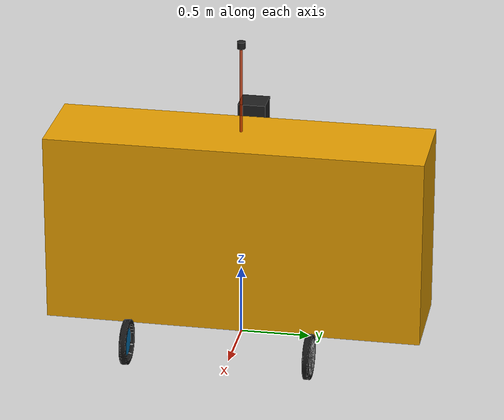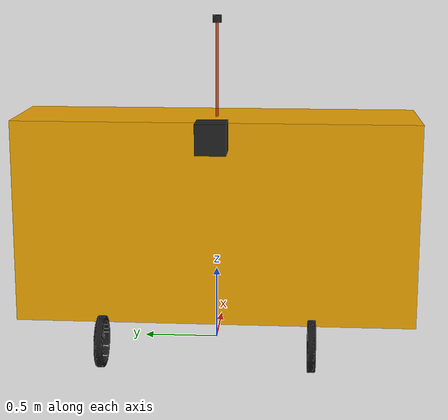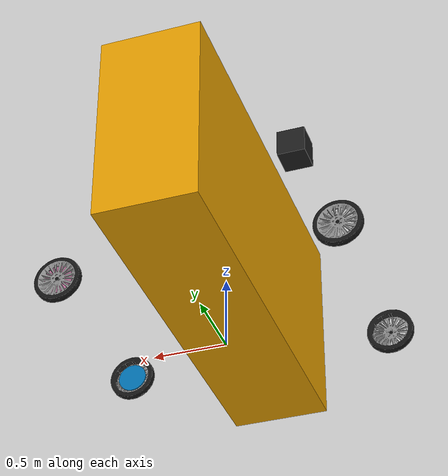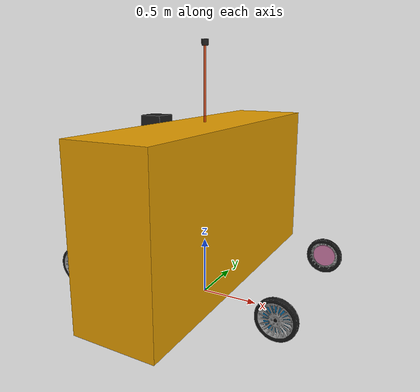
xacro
<?xml version="1.0" ?>

<robot name="$(arg roboname)" xmlns:xacro="http://www.ros.org/wiki/xacro">

  <xacro:property name="PI" value="3.1415926835897931"/>

  <!-- base -->
  <xacro:property name="base_length" value="2.695"/>
  <xacro:property name="base_width" value="0.68"/>
  <xacro:property name="base_height" value="1.370"/>
  <xacro:property name="base_collision_height" value="0.875"/>
  <xacro:property name="base_mass" value="956"/>
  <xacro:property name="base_mass_ixx" value="343"/>
  <xacro:property name="base_mass_iyy" value="728"/>
  <xacro:property name="base_mass_izz" value="772"/>

  <!-- rear tyre -->
  <xacro:property name="rear_tyre_x" value="0.945"/>
  <xacro:property name="rear_tyre_y" value="0.642"/>
  <xacro:property name="rear_tyre_r" value="0.3"/>
  <xacro:property name="rear_tyre_length" value="0.165"/>
  <xacro:property name="rear_tyre_mass" value="20"/>
  <xacro:property name="rear_tyre_mass_ixx" value="0.5"/>
  <xacro:property name="rear_tyre_mass_iyy" value="0.9"/>
  <xacro:property name="rear_tyre_mass_izz" value="0.5"/>

  <!-- front tyre -->
  <xacro:property name="front_tyre_x" value="0.923"/>
  <xacro:property name="front_tyre_y" value="0.642"/>
  <xacro:property name="front_tyre_r" value="0.3"/>
  <xacro:property name="front_tyre_length" value="0.165"/>
  <xacro:property name="front_tyre_mass" value="20"/>
  <xacro:property name="front_tyre_mass_ixx" value="0.5"/>
  <xacro:property name="front_tyre_mass_iyy" value="0.9"/>
  <xacro:property name="front_tyre_mass_izz" value="0.5"/>

  <!-- steering -->
  <xacro:property name="str_angle" value="0.6"/>
  <xacro:property name="str_length" value="0.01"/>
  <xacro:property name="str_radius" value="0.1"/>
  <xacro:property name="str_mass" value="5"/>
  <xacro:property name="str_mass_ixx" value="0.012"/>
  <xacro:property name="str_mass_iyy" value="0.025"/>
  <xacro:property name="str_mass_izz" value="0.012"/>

  <!--Car Body-->
  <link name="base_link">
    <collision>
      <origin xyz="0 0 ${base_collision_height}" rpy="0 0 0"/>
      <geometry>
        <box size="${base_length} ${base_width} ${base_height}"/>
      </geometry>
    </collision>

    <visual>
      <origin xyz="0.05 0 ${base_collision_height}" rpy="0 0 ${PI/2}"/>
      <geometry>
        <box size="${base_length} ${base_width} ${base_height}"/>
      </geometry>
    </visual>
  </link>

  <joint name="inertial_joint" type="fixed">
    <parent link="base_link"/>
    <child link="main_mass"/>
    <origin xyz="0 0 0" rpy="0 0 0"/>
  </joint>

  <link name="main_mass" type="fixed">
    <inertial>
      <origin xyz="0 0 0" rpy="0 0 0"/>
      <mass value="${base_mass}"/>
      <inertia
        ixx="${base_mass_ixx}"  ixy="0.000000"  ixz="0.000000"
        iyy="${base_mass_iyy}"  iyz="0.000000"
        izz="${base_mass_izz}"/>
    </inertial>
  </link>

  <!--Rear Right Wheel-->
  <joint name="rear_right_wheel_joint" type="continuous">
    <parent link="base_link"/>
    <child link="rear_right_wheel_link"/>
    <origin xyz="${-rear_tyre_x} ${-rear_tyre_y} ${rear_tyre_r}" rpy="0 0 0"/>
    <axis xyz="0 1 0"/>
    <dynamics damping="0.1"/>
    <limit effort="100000" velocity="10000" />
    <joint_properties damping="0.0" friction="0.0" />
  </joint>

  <link name="rear_right_wheel_link">
    <collision>
      <origin xyz="0 0 0" rpy="${PI/2} 0 0"/>
      <geometry>
        <cylinder length="${rear_tyre_length}" radius="${rear_tyre_r}"/>
      </geometry>
    </collision>

    <visual>
      <origin xyz="0 0 0" rpy="0 0 -${PI/2}"/>
      <geometry>
        <mesh filename="package://car_model/meshes/wheel.dae"/>
      </geometry>
    </visual>

    <inertial>
      <origin xyz="0 0 0" rpy="0 0 0"/>
      <mass value="${rear_tyre_mass}"/>
      <inertia
        ixx="${rear_tyre_mass_ixx}"  ixy="0.000000"  ixz="0.000000"
        iyy="${rear_tyre_mass_iyy}"  iyz="0.000000"
        izz="${rear_tyre_mass_izz}"/>
    </inertial>
  </link>

  <!--Rear Left Wheel-->
  <joint name="rear_left_wheel_joint" type="continuous">
    <parent link="base_link"/>
    <child link="rear_left_wheel_link"/>
    <origin xyz="${-rear_tyre_x} ${rear_tyre_y} ${rear_tyre_r}" rpy="0 0 0"/>
    <axis xyz="0 1 0"/>
    <dynamics damping="0.1"/>
    <limit effort="100000" velocity="10000" />
    <joint_properties damping="0.0" friction="0.0" />
  </joint>

  <link name="rear_left_wheel_link">
    <collision>
      <origin xyz="0 0 0" rpy="${PI/2} 0 0"/>
      <geometry>
        <cylinder length="${rear_tyre_length}" radius="${rear_tyre_r}"/>
      </geometry>
    </collision>

    <visual>
      <origin xyz="0 0 0" rpy="0 0 ${PI/2}"/>
      <geometry>
        <mesh filename="package://car_model/meshes/wheel.dae"/>
        <cylinder length="${rear_tyre_length}" radius="${rear_tyre_r}"/>
      </geometry>
    </visual>

    <inertial>
      <origin xyz="0 0 0" rpy="0 0 0"/>
      <mass value="${rear_tyre_mass}"/>
      <inertia
        ixx="${rear_tyre_mass_ixx}"  ixy="0.000000"  ixz="0.000000"
        iyy="${rear_tyre_mass_iyy}"  iyz="0.000000"
        izz="${rear_tyre_mass_izz}"/>
    </inertial>
  </link>

  <!--Front Right Steering-->
  <joint name="front_right_steering_joint" type="revolute">
    <parent link="base_link"/>
    <child link="front_right_steering_link"/>
    <origin xyz="${front_tyre_x} ${-front_tyre_y} ${front_tyre_r}" rpy="0 0 0"/>
    <axis xyz="0 0 1"/>
    <limit lower="${-str_angle}" upper="${str_angle}" effort="1000000.0" velocity="10000.0"/>
    <dynamics damping="10.0" friction="0.0"/>
  </joint>

  <link name="front_right_steering_link">
    <visual>
      <origin xyz="0 0 0" rpy="${PI/2} 0 0"/>
      <geometry>
        <cylinder length="${str_length}" radius="${str_radius}"/>
      </geometry>
    </visual>

    <inertial>
      <origin xyz="0 0 0" rpy="0 0 0"/>
      <mass value="${str_mass}"/>
      <inertia
      ixx="${str_mass_ixx}"  ixy="0.000000"  ixz="0.000000"
      iyy="${str_mass_iyy}"  iyz="0.000000"
      izz="${str_mass_izz}"/>
    </inertial>
  </link>

  <!--Front Right Wheel-->
  <joint name="front_right_wheel_joint" type="continuous">
    <parent link="front_right_steering_link"/>
    <child link="front_right_wheel_link"/>
    <origin xyz="0 0 0" rpy="0 0 0"/>
    <axis xyz="0 1 0"/>
    <dynamics damping="0.1"/>
    <limit effort="1000000" velocity="10000" />
    <joint_properties damping="0.0" friction="0.0" />
  </joint>

  <link name="front_right_wheel_link">
    <collision>
      <origin xyz="0 0 0" rpy="${PI/2} 0 0"/>
      <geometry>
        <cylinder length="${front_tyre_length}" radius="${front_tyre_r}"/>
      </geometry>
    </collision>

    <visual>
      <origin xyz="0 0 0" rpy="0 0 -${PI/2}"/>
      <geometry>
        <mesh filename="package://car_model/meshes/wheel.dae"/>
        <cylinder length="${front_tyre_length}" radius="${front_tyre_r}"/>
      </geometry>
    </visual>

    <inertial>
      <origin xyz="0 0 0" rpy="0 0 0"/>
      <mass value="${front_tyre_mass}"/>
      <inertia
        ixx="${front_tyre_mass_ixx}"  ixy="0.000000"  ixz="0.000000"
        iyy="${front_tyre_mass_iyy}"  iyz="0.000000"
        izz="${front_tyre_mass_izz}"/>
    </inertial>
  </link>

  <!--Front Left Steering-->
  <joint name="front_left_steering_joint" type="revolute">
    <parent link="base_link"/>
    <child link="front_left_steering_link"/>
    <origin xyz="${front_tyre_x} ${front_tyre_y} ${front_tyre_r}" rpy="0 0 0"/>
    <axis xyz="0 0 1"/>
    <limit lower="${-str_angle}" upper="${str_angle}" effort="1000000.0" velocity="10000.0"/>
    <dynamics damping="10.0" friction="0.0"/>
  </joint>

  <link name="front_left_steering_link">

    <visual>
      <origin xyz="0 0 0" rpy="${PI/2} 0 0"/>
      <geometry>
        <cylinder length="${str_length}" radius="${str_radius}"/>
      </geometry>
    </visual>

    <inertial>
      <origin xyz="0 0 0" rpy="0 0 0"/>
      <mass value="${str_mass}"/>
      <inertia
      ixx="${str_mass_ixx}"  ixy="0.000000"  ixz="0.000000"
      iyy="${str_mass_iyy}"  iyz="0.000000"
      izz="${str_mass_izz}"/>
    </inertial>
  </link>

  <!--Front Left Wheel-->
  <joint name="front_left_wheel_joint" type="continuous">
    <parent link="front_left_steering_link"/>
    <child link="front_left_wheel_link"/>
    <origin xyz="0 0 0" rpy="0 0 0"/>
    <axis xyz="0 1 0"/>
    <dynamics damping="0.1"/>
    <limit effort="1000000" velocity="10000" />
    <joint_properties damping="0.0" friction="0.0" />
  </joint>

  <link name="front_left_wheel_link">
    <collision>
      <origin xyz="0 0 0" rpy="${PI/2} 0 0"/>
      <geometry>
        <cylinder length="${front_tyre_length}" radius="${front_tyre_r}"/>
      </geometry>
    </collision>

    <visual>
      <origin xyz="0 0 0" rpy="0 0 ${PI/2}"/>
      <geometry>
        <mesh filename="package://car_model/meshes/wheel.dae"/>
      </geometry>
    </visual>

    <inertial>
      <origin xyz="0 0 0" rpy="0 0 0"/>
      <mass value="${front_tyre_mass}"/>
      <inertia
        ixx="${front_tyre_mass_ixx}"  ixy="0.000000"  ixz="0.000000"
        iyy="${front_tyre_mass_iyy}"  iyz="0.000000"
        izz="${front_tyre_mass_izz}"/>
    </inertial>
  </link>

  <!-- motors and transmissions for the two rear wheels -->
  <transmission name="tran1">
    <type>transmission_interface/SimpleTransmission</type>
    <joint name="rear_right_wheel_joint">
      <hardwareInterface>hardware_interface/VelocityJointInterface</hardwareInterface>
    </joint>
    <actuator name="motor1">
      <hardwareInterface>hardware_interface/VelocityJointInterface</hardwareInterface>
      <mechanicalReduction>1</mechanicalReduction>
    </actuator>
  </transmission>

  <transmission name="tran2">
    <type>transmission_interface/SimpleTransmission</type>
    <joint name="rear_left_wheel_joint">
      <hardwareInterface>hardware_interface/VelocityJointInterface</hardwareInterface>
    </joint>
    <actuator name="motor2">
      <hardwareInterface>hardware_interface/VelocityJointInterface</hardwareInterface>
      <mechanicalReduction>1</mechanicalReduction>
    </actuator>
  </transmission>

  <!-- EPS and transmissions for the front steering -->
  <transmission name="tran3">
    <type>transmission_interface/SimpleTransmission</type>
    <joint name="front_right_steering_joint">
      <hardwareInterface>hardware_interface/EffortJointInterface</hardwareInterface>
    </joint>
    <actuator name="eps_right">
      <hardwareInterface>hardware_interface/EffortJointInterface</hardwareInterface>
      <mechanicalReduction>1</mechanicalReduction>
      <motorTorqueConstant>1000000</motorTorqueConstant>
    </actuator>
  </transmission>

  <transmission name="tran4">
    <type>transmission_interface/SimpleTransmission</type>
    <joint name="front_left_steering_joint">
      <hardwareInterface>hardware_interface/EffortJointInterface</hardwareInterface>
    </joint>
    <actuator name="eps_left">
      <hardwareInterface>hardware_interface/EffortJointInterface</hardwareInterface>
      <mechanicalReduction>1</mechanicalReduction>
      <motorTorqueConstant>1000000</motorTorqueConstant>
    </actuator>
  </transmission>

  <!-- Friction Parametres -->

  <gazebo reference="rear_right_wheel_link">
    <mu1>10000000</mu1>
    <mu2>10000000</mu2>
    <kp>10000000</kp>
    <kd>1</kd>
    <minDepth>0.01</minDepth>
    <maxVel>100</maxVel>
  </gazebo>

  <gazebo reference="rear_left_wheel_link">
    <mu1>10000000</mu1>
    <mu2>10000000</mu2>
    <kp>10000000</kp>
    <kd>1</kd>
    <minDepth>0.01</minDepth>
    <maxVel>100</maxVel>
  </gazebo>

  <gazebo reference="front_right_wheel_link">
    <mu1>10000000</mu1>
    <mu2>10000000</mu2>
    <kp>10000000</kp>
    <kd>1</kd>
    <minDepth>0.01</minDepth>
    <maxVel>100</maxVel>
  </gazebo>

  <gazebo reference="front_left_wheel_link">
    <mu1>10000000</mu1>
    <mu2>10000000</mu2>
    <kp>10000000</kp>
    <kd>1</kd>
    <minDepth>0.01</minDepth>
    <maxVel>100</maxVel>
  </gazebo>

  <!-- Gazebo Plugins -->
  <gazebo>
    <plugin name="gazebo_ros_control" filename="libgazebo_ros_control.so">
      <robotNamespace>/$(arg roboname)</robotNamespace>
      <robotParam>robot_description</robotParam>
      <robotSimType>gazebo_ros_control/DefaultRobotHWSim</robotSimType>
    </plugin>
  </gazebo>

  <gazebo>
    <plugin name="joint_state_publisher" filename="libgazebo_ros_joint_state_publisher.so">
      <jointName>rear_left_wheel_joint, rear_right_wheel_joint, front_left_steering_joint, front_right_steering_joint, front_right_wheel_joint, front_left_wheel_joint</jointName>
      <updateRate>50.0</updateRate>
      <robotNamespace>/$(arg roboname)</robotNamespace>
      <alwaysOn>true</alwaysOn>
    </plugin>
  </gazebo>
  <xacro:include filename="camern.xacro" />
  <xacro:include filename="camernp.xacro" />
  <xacro:include filename="lidern.xacro" />
  <xacro:include filename="lidernp.xacro" />

</robot>

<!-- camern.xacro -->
<robot name="my_camera" xmlns:xacro="http://wiki.ros.org/xacro">
    <!-- 摄像头属性 -->
    <xacro:property name="camera_length" value="0.2" /> <!-- 摄像头长度(x) -->
    <xacro:property name="camera_width" value="0.2" /> <!-- 摄像头宽度(y) -->
    <xacro:property name="camera_height" value="0.2" /> <!-- 摄像头高度(z) -->
    <xacro:property name="camera_x" value="-0.5" /> <!-- 摄像头安装的x坐标gazebo中红色的轴 -->
    <xacro:property name="camera_y" value="0.0" /> <!-- 摄像头安装的y坐标 -->
    <xacro:property name="camera_z" value="1.500" /> <!-- 摄像头安装的z坐标:底盘高度 / 2 + 摄像头高度 / 2  -->

    <xacro:property name="camera_m" value="0.01" /> <!-- 摄像头质量 -->

<!-- 摄像头相关的 xacro 文件 -->

    <!-- 摄像头关节以及link -->
    <link name="camera">
        <visual>
            <geometry>
                <box size="${camera_length} ${camera_width} ${camera_height}" />
            </geometry>
            <origin xyz="0.0 0.0 0.0" rpy="0.0 0.0 0.0" />
            <material name="black" />
        </visual>
        <collision>
            <geometry>
                <box size="${camera_length} ${camera_width} ${camera_height}" />
            </geometry>
            <origin xyz="0.0 0.0 0.0" rpy="0.0 0.0 0.0" />
        </collision>
    </link>

    <joint name="camera2base_link" type="fixed">
        <parent link="base_link" />
        <child link="camera" />
        <origin xyz="${camera_x} ${camera_y} ${camera_z}" />
    </joint>
    <gazebo reference="camera">
        <material>Gazebo/Blue</material>
    </gazebo>
    </robot>

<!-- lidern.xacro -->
<!--
    小车底盘添加雷达
-->
<robot name="my_laser" xmlns:xacro="http://wiki.ros.org/xacro">

    <!-- 雷达支架 -->
    <xacro:property name="support_length" value="1.5" /> <!-- 支架长度 -->
    <xacro:property name="support_radius" value="0.01" /> <!-- 支架半径 -->
    <xacro:property name="support_x" value="0.0" /> <!-- 支架安装的x坐标 -->
    <xacro:property name="support_y" value="0.0" /> <!-- 支架安装的y坐标 -->
    <xacro:property name="support_z" value="${base_height / 2 + support_length / 2}" /> <!-- 支架安装的z坐标:底盘高度 / 2 + 支架高度 / 2  -->

    <xacro:property name="support_m" value="0.02" /> <!-- 支架质量 -->

    <link name="support">
        <visual>
            <geometry>
                <cylinder radius="${support_radius}" length="${support_length}" />
            </geometry>
            <origin xyz="0.0 0.0 0.0" rpy="0.0 0.0 0.0" />
            <material name="red">
                <color rgba="0.8 0.2 0.0 0.8" />
            </material>
        </visual>

        <collision>
            <geometry>
                <cylinder radius="${support_radius}" length="${support_length}" />
            </geometry>
            <origin xyz="0.0 0.0 0.0" rpy="0.0 0.0 0.0" />
        </collision>

    </link>

    <joint name="support2base_link" type="fixed">
        <parent link="base_link" />
        <child link="support" />
        <origin xyz="${support_x} ${support_y} ${support_z}" />
    </joint>

    <gazebo reference="support">
        <material>Gazebo/White</material>
    </gazebo>

    <!-- 雷达属性 -->
    <xacro:property name="laser_length" value="0.05" /> <!-- 雷达长度 -->
    <xacro:property name="laser_radius" value="0.03" /> <!-- 雷达半径 -->
    <xacro:property name="laser_x" value="0.0" /> <!-- 雷达安装的x坐标 -->
    <xacro:property name="laser_y" value="0.0" /> <!-- 雷达安装的y坐标 -->
    <xacro:property name="laser_z" value="${support_length / 2 + laser_length / 2}" /> <!-- 雷达安装的z坐标:支架高度 / 2 + 雷达高度 / 2  -->

    <xacro:property name="laser_m" value="0.1" /> <!-- 雷达质量 -->

    <!-- 雷达关节以及link -->
    <link name="laser">
        <visual>
            <geometry>
                <cylinder radius="${laser_radius}" length="${laser_length}" />
            </geometry>
            <origin xyz="0.0 0.0 0.0" rpy="0.0 0.0 0.0" />
            <material name="black" />
        </visual>
        <collision>
            <geometry>
                <cylinder radius="${laser_radius}" length="${laser_length}" />
            </geometry>
            <origin xyz="0.0 0.0 0.0" rpy="0.0 0.0 0.0" />
        </collision>
    </link>

    <joint name="laser2support" type="fixed">
        <parent link="support" />
        <child link="laser" />
        <origin xyz="${laser_x} ${laser_y} ${laser_z}" />
    </joint>
    <gazebo reference="laser">
        <material>Gazebo/Black</material>
    </gazebo>
</robot>
